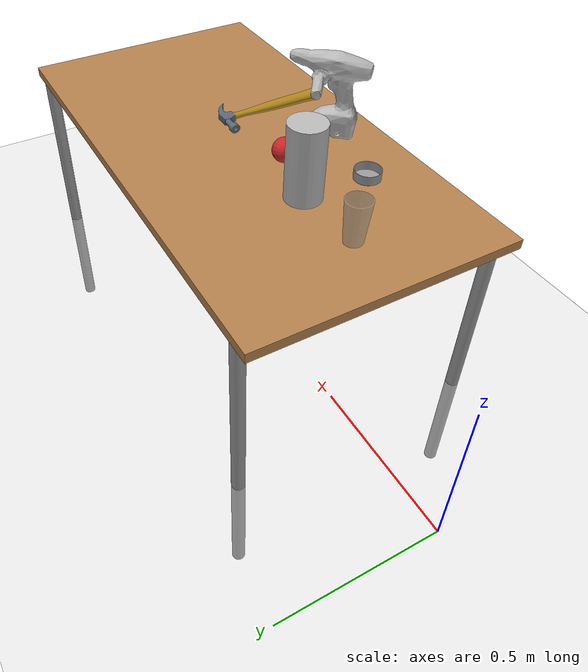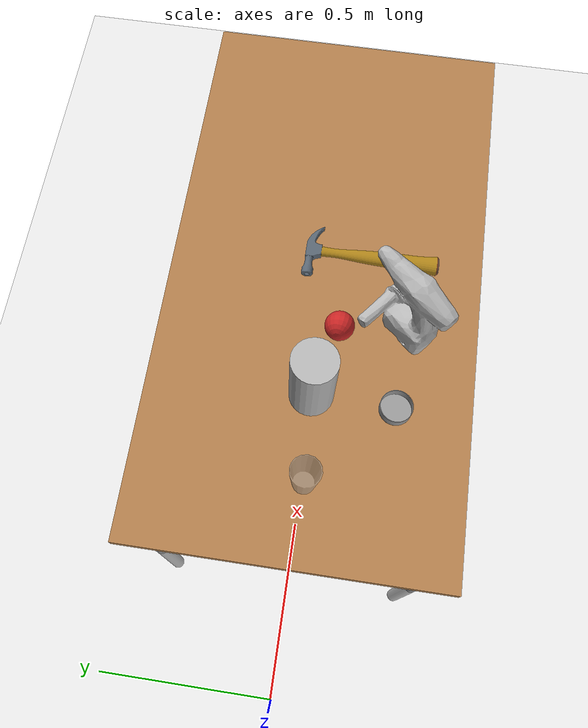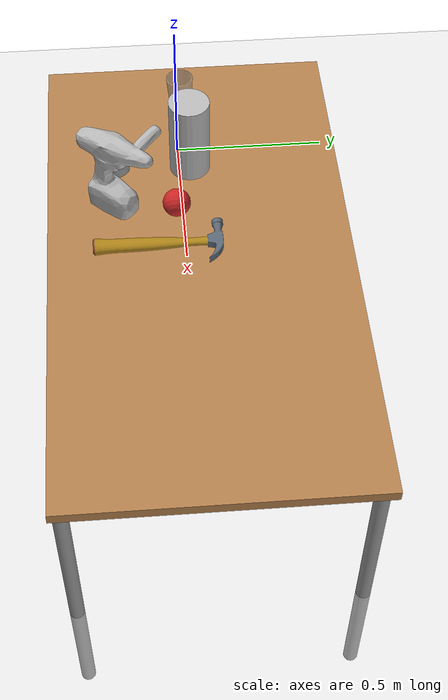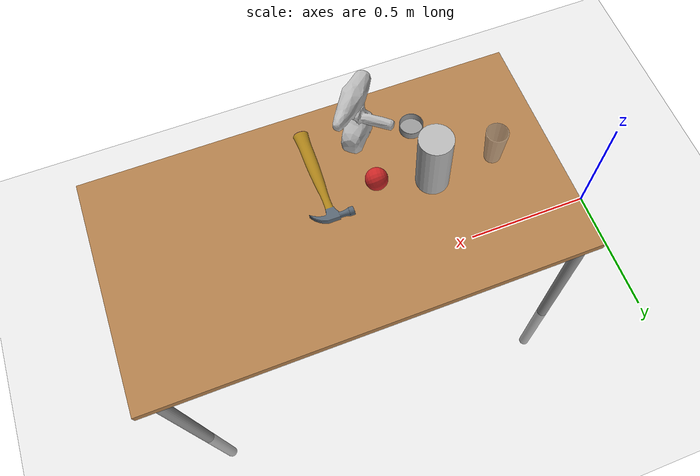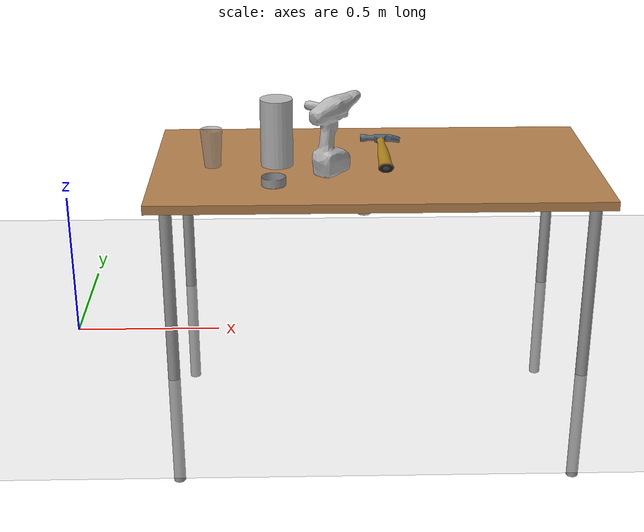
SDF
<sdf version="1.4">
 <world name="table_with_objects closer">
  <light name="sun" type="directional">
   <pose>0 0 10 0 -0 0</pose>
   <diffuse>0.8 0.8 0.8 1</diffuse>
   <specular>0.2 0.2 0.2 1</specular>
   <attenuation>
    <range>1000</range>
    <constant>0.9</constant>
    <linear>0.01</linear>
    <quadratic>0.001</quadratic>
   </attenuation>
   <direction>-0.5 0.1 -0.9</direction>
  </light>
  <model name="ground_plane">
   <static>1</static>
   <link name="link">
    <collision name="collision">
     <geometry><plane><normal>0 0 1</normal><size>100 100</size></plane></geometry>
     <surface><friction><ode><mu>100</mu><mu2>50</mu2></ode></friction></surface>
    </collision>
    <visual name="visual">
     <cast_shadows>0</cast_shadows>
     <geometry><plane><normal>0 0 1</normal><size>100 100</size></plane></geometry>
     <material>
      <script><uri>file://media/materials/scripts/gazebo.material</uri><name>Gazebo/Grey</name></script>
     </material>
    </visual>
    <velocity_decay><linear>0</linear><angular>0</angular></velocity_decay>
   </link>
  </model>
  <physics type="ode">
   <real_time_factor>1</real_time_factor>
   <real_time_update_rate>1000</real_time_update_rate>
   <max_step_size>0.0035</max_step_size>
   <gravity>0 0 -9.8</gravity>
  </physics>
  <scene><ambient>0.4 0.4 0.4 1</ambient><background>0.7 0.7 0.7 1</background><shadows>0</shadows></scene>
  <model name="table">
   <static>1</static>
   <link name="link">
    <collision name="surface">
     <pose>0 0 1 0 -0 0</pose>
     <geometry><box><size>1.5 0.8 0.03</size></box></geometry>
     <surface><friction><ode><mu>0.6</mu><mu2>0.6</mu2></ode></friction></surface>
    </collision>
    <visual name="visual1">
     <pose>0 0 1 0 -0 0</pose>
     <geometry><box><size>1.5 0.8 0.03</size></box></geometry>
     <material>
      <script><uri>file://media/materials/scripts/gazebo.material</uri><name>Gazebo/Wood</name></script>
     </material>
    </visual>
    <collision name="front_left_leg">
     <pose>0.68 0.38 0.5 0 -0 0</pose>
     <geometry><cylinder><radius>0.02</radius><length>1</length></cylinder></geometry>
    </collision>
    <visual name="front_left_leg">
     <pose>0.68 0.38 0.5 0 -0 0</pose>
     <geometry><cylinder><radius>0.02</radius><length>1</length></cylinder></geometry>
     <material>
      <script><uri>file://media/materials/scripts/gazebo.material</uri><name>Gazebo/Grey</name></script>
     </material>
    </visual>
    <collision name="front_right_leg">
     <pose>0.68 -0.38 0.5 0 -0 0</pose>
     <geometry><cylinder><radius>0.02</radius><length>1</length></cylinder></geometry>
    </collision>
    <visual name="front_right_leg">
     <pose>0.68 -0.38 0.5 0 -0 0</pose>
     <geometry><cylinder><radius>0.02</radius><length>1</length></cylinder></geometry>
     <material>
      <script><uri>file://media/materials/scripts/gazebo.material</uri><name>Gazebo/Grey</name></script>
     </material>
    </visual>
    <collision name="back_right_leg">
     <pose>-0.68 -0.38 0.5 0 -0 0</pose>
     <geometry><cylinder><radius>0.02</radius><length>1</length></cylinder></geometry>
    </collision>
    <visual name="back_right_leg">
     <pose>-0.68 -0.38 0.5 0 -0 0</pose>
     <geometry><cylinder><radius>0.02</radius><length>1</length></cylinder></geometry>
     <material>
      <script><uri>file://media/materials/scripts/gazebo.material</uri><name>Gazebo/Grey</name></script>
     </material>
    </visual>
    <collision name="back_left_leg">
     <pose>-0.68 0.38 0.5 0 -0 0</pose>
     <geometry><cylinder><radius>0.02</radius><length>1</length></cylinder></geometry>
    </collision>
    <visual name="back_left_leg">
     <pose>-0.68 0.38 0.5 0 -0 0</pose>
     <geometry><cylinder><radius>0.02</radius><length>1</length></cylinder></geometry>
     <material>
      <script><uri>file://media/materials/scripts/gazebo.material</uri><name>Gazebo/Grey</name></script>
     </material>
    </visual>
    <velocity_decay><linear>0</linear><angular>0</angular></velocity_decay>
   </link>
   <pose>1.05248 0.012053 -0.4 0 -0 0</pose>
  </model>
  <model name="coke_can">
   <link name="link">
    <inertial>
     <pose>-0.01 -0.012 0.15 0 -0 0</pose>
     <mass>0.39</mass>
     <inertia><ixx>0.00058</ixx><ixy>0</ixy><ixz>0</ixz><iyy>0.00058</iyy><iyz>0</iyz><izz>0.00019</izz></inertia>
    </inertial>
    <collision name="collision">
     <pose>0 0 -0.46 0 -0 0</pose>
     <geometry><mesh><uri>model://coke_can/meshes/coke_can.dae</uri></mesh></geometry>
     <surface>
      <friction><ode><mu>1</mu><mu2>1</mu2></ode></friction>
      <contact><ode><kp>1e+07</kp><kd>1</kd><min_depth>0.001</min_depth><max_vel>0.1</max_vel></ode></contact>
     </surface>
    </collision>
    <visual name="visual">
     <pose>0 0 -0.46 0 -0 0</pose>
     <geometry><mesh><uri>model://coke_can/meshes/coke_can.dae</uri></mesh></geometry>
    </visual>
    <velocity_decay><linear>0</linear><angular>0</angular></velocity_decay>
   </link>
   <pose>1.03465 0.272989 0.611215 -0.004206 0.000245 0.345327</pose>
   <static>0</static>
  </model>
  <model name="beer">
   <link name="link">
    <pose>0 0 0.115 0 -0 0</pose>
    <inertial>
     <mass>0.39</mass>
     <inertia><ixx>0.00058</ixx><ixy>0</ixy><ixz>0</ixz><iyy>0.00058</iyy><iyz>0</iyz><izz>0.00019</izz></inertia>
    </inertial>
    <collision name="collision">
     <geometry><cylinder><radius>0.055</radius><length>0.23</length></cylinder></geometry>
    </collision>
    <visual name="visual">
     <geometry><cylinder><radius>0.055</radius><length>0.23</length></cylinder></geometry>
     <material>
      <script>
       <uri>model://beer/materials/scripts</uri>
       <uri>model://beer/materials/textures</uri>
       <name>Beer/Diffuse</name>
      </script>
     </material>
    </visual>
    <velocity_decay><linear>0</linear><angular>0</angular></velocity_decay>
   </link>
   <pose>0.720054 0.004069 0.614998 -4e-06 -8e-06 1.14913</pose>
   <static>0</static>
  </model>
  <model name="drill">
   <link name="link">
    <inertial>
     <pose>-0.00637 -0.008 0.13254 0 -0 0</pose>
     <inertia>
      <ixx>0.0133113</ixx>
      <ixy>-0.00030365</ixy>
      <ixz>-0.00034148</ixz>
      <iyy>0.0115766</iyy>
      <iyz>0.00088073</iyz>
      <izz>0.00378028</izz>
     </inertia>
     <mass>1.50252</mass>
    </inertial>
    <collision name="collision">
     <pose>0 0 -0.09 0 -0 0</pose>
     <geometry><mesh><uri>model://cordless_drill/meshes/cordless_drill.stl</uri></mesh></geometry>
     <surface><contact><ode><max_vel>0.1</max_vel><min_depth>0.001</min_depth></ode></contact></surface>
    </collision>
    <visual name="visual">
     <pose>0 0 -0.09 0 -0 0</pose>
     <geometry><mesh><uri>model://cordless_drill/meshes/cordless_drill.dae</uri></mesh></geometry>
    </visual>
    <velocity_decay><linear>0</linear><angular>0</angular></velocity_decay>
   </link>
   <pose>0.908574 -0.201183 0.652931 1.1e-05 -3.8e-05 -0.727946</pose>
   <static>1</static>
  </model>
  <model name="cricket_ball">
   <link name="link">
    <pose>0 0 0.0375 0 -0 0</pose>
    <inertial>
     <mass>0.1467</mass>
     <inertia>
      <ixx>8.25187e-05</ixx>
      <ixy>0</ixy>
      <ixz>0</ixz>
      <iyy>8.25187e-05</iyy>
      <iyz>0</iyz>
      <izz>8.25187e-05</izz>
     </inertia>
    </inertial>
    <collision name="collision"><geometry><sphere><radius>0.0375</radius></sphere></geometry></collision>
    <visual name="visual">
     <geometry><sphere><radius>0.0375</radius></sphere></geometry>
     <material>
      <script><uri>file://media/materials/scripts/gazebo.material</uri><name>Gazebo/Red</name></script>
     </material>
    </visual>
    <velocity_decay><linear>0</linear><angular>0.005</angular></velocity_decay>
   </link>
   <pose>0.930281 -0.045153 0.642098 -1.28386 -0.199859 1.41678</pose>
   <static>0</static>
  </model>
  <model name="hammer">
   <static>1</static>
   <link name="link">
    <collision name="collision">
     <geometry><mesh><uri>model://hammer/meshes/hammer.dae</uri></mesh></geometry>
    </collision>
    <visual name="visual"><geometry><mesh><uri>model://hammer/meshes/hammer.dae</uri></mesh></geometry></visual>
    <velocity_decay><linear>0</linear><angular>0</angular></velocity_decay>
   </link>
   <pose>1.06272 -0.027037 0.69 0 -0 0</pose>
   <static>1</static>
  </model>
  <model name="plastic_cup">
   <link name="link">
    <pose>0 0 0.065 0 -0 0</pose>
    <inertial>
     <mass>0.0599</mass>
     <inertia>
      <ixx>0.000302896</ixx>
      <ixy>0</ixy>
      <ixz>0</ixz>
      <iyy>0.000302896</iyy>
      <iyz>0</iyz>
      <izz>3.28764e-05</izz>
     </inertia>
    </inertial>
    <collision name="collision">
     <geometry><mesh><uri>model://plastic_cup/meshes/plastic_cup.dae</uri></mesh></geometry>
     <surface><contact><ode><max_vel>0.1</max_vel><min_depth>0.001</min_depth></ode></contact></surface>
    </collision>
    <visual name="visual">
     <geometry><mesh><uri>model://plastic_cup/meshes/plastic_cup.dae</uri></mesh></geometry>
     <material>
      <script><uri>file://media/materials/scripts/gazebo.material</uri><name>Gazebo/GreyTransparent</name></script>
     </material>
    </visual>
    <velocity_decay><linear>0</linear><angular>0</angular></velocity_decay>
   </link>
   <pose>0.502486 -0.015253 0.622082 0.01554 -0.01038 -0.00034</pose>
   <static>0</static>
  </model>
  <model name="round_tin_base">
   <link name="link">
    <inertial>
     <pose>0 0 0.014085 0 -0 0</pose>
     <mass>0.0223</mass>
     <inertia>
      <ixx>1.93147e-05</ixx>
      <ixy>0</ixy>
      <ixz>0</ixz>
      <iyy>1.93147e-05</iyy>
      <iyz>0</iyz>
      <izz>3.568e-05</izz>
     </inertia>
    </inertial>
    <collision name="collision_cylinder">
     <pose>0 0 0.001 0 -0 0</pose>
     <geometry><cylinder><radius>0.04</radius><length>0.002</length></cylinder></geometry>
     <surface><contact><ode><max_vel>0.1</max_vel><min_depth>0.0001</min_depth></ode></contact></surface>
    </collision>
    <visual name="visual_cylinder">
     <pose>0 0 0.001 0 -0 0</pose>
     <geometry><cylinder><radius>0.04</radius><length>0.002</length></cylinder></geometry>
     <material>
      <script><uri>file://media/materials/scripts/gazebo.material</uri><name>Gazebo/Grey</name></script>
     </material>
    </visual>
    <collision name="collision_mesh">
     <pose>0 0 0.001 0 -0 0</pose>
     <geometry><mesh><uri>model://round_tin_base/meshes/round_tin_base.dae</uri></mesh></geometry>
     <surface><contact><ode><max_vel>0.1</max_vel><min_depth>0.0001</min_depth></ode></contact></surface>
    </collision>
    <visual name="visual_mesh">
     <pose>0 0 0.001 0 -0 0</pose>
     <geometry><mesh><uri>model://round_tin_base/meshes/round_tin_base.dae</uri></mesh></geometry>
     <material>
      <script><uri>file://media/materials/scripts/gazebo.material</uri><name>Gazebo/Grey</name></script>
     </material>
    </visual>
    <velocity_decay><linear>0</linear><angular>0</angular></velocity_decay>
   </link>
   <pose>0.711685 -0.201667 0.6149 -0 -0 -1.9e-05</pose>
   <static>0</static>
  </model>
 </world>
</sdf>
